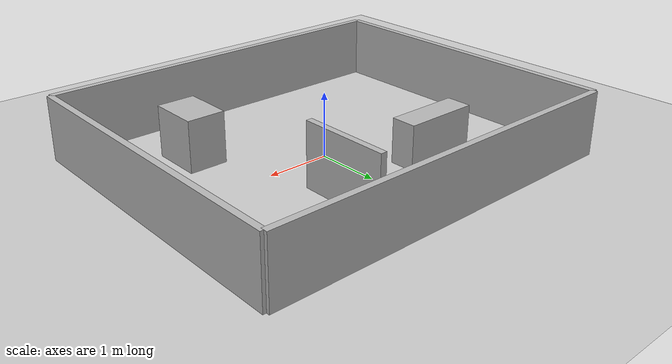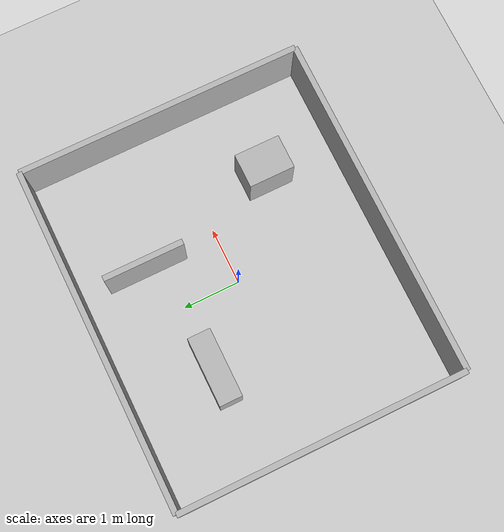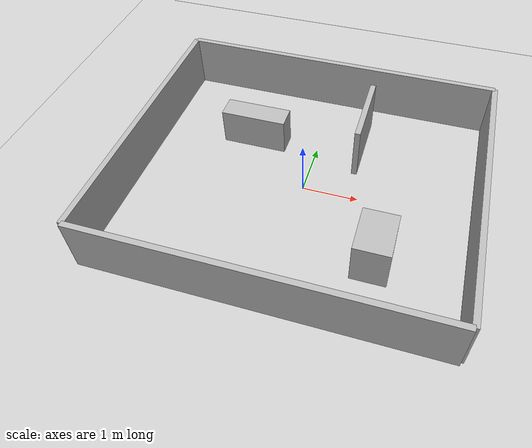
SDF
<?xml version="1.0" ?>

<sdf version="1.6">

  <world name="inspection_room">

    <!-- 光照 -->
    <include>
      <uri>model://sun</uri>
    </include>

    <!-- 地面 -->
    <include>
      <uri>model://ground_plane</uri>
    </include>

    <!-- 房间四面墙 -->
    <!-- 房间内部大约 6 m × 5 m -->

    <!-- 北墙 -->
    <model name="wall_north">
      <static>true</static>

      <pose>0 2.5 0.5 0 0 0</pose>

      <link name="link">

        <collision name="collision">
          <geometry>
            <box>
              <size>6.0 0.1 1.0</size>
            </box>
          </geometry>
        </collision>

        <visual name="visual">
          <geometry>
            <box>
              <size>6.0 0.1 1.0</size>
            </box>
          </geometry>
        </visual>

      </link>
    </model>

    <!-- 南墙 -->
    <model name="wall_south">
      <static>true</static>

      <pose>0 -2.5 0.5 0 0 0</pose>

      <link name="link">

        <collision name="collision">
          <geometry>
            <box>
              <size>6.0 0.1 1.0</size>
            </box>
          </geometry>
        </collision>

        <visual name="visual">
          <geometry>
            <box>
              <size>6.0 0.1 1.0</size>
            </box>
          </geometry>
        </visual>

      </link>
    </model>

    <!-- 西墙 -->
    <model name="wall_west">
      <static>true</static>

      <pose>-3.0 0 0.5 0 0 0</pose>

      <link name="link">

        <collision name="collision">
          <geometry>
            <box>
              <size>0.1 5.0 1.0</size>
            </box>
          </geometry>
        </collision>

        <visual name="visual">
          <geometry>
            <box>
              <size>0.1 5.0 1.0</size>
            </box>
          </geometry>
        </visual>

      </link>
    </model>

    <!-- 东墙 -->
    <model name="wall_east">
      <static>true</static>

      <pose>3.0 0 0.5 0 0 0</pose>

      <link name="link">

        <collision name="collision">
          <geometry>
            <box>
              <size>0.1 5.0 1.0</size>
            </box>
          </geometry>
        </collision>

        <visual name="visual">
          <geometry>
            <box>
              <size>0.1 5.0 1.0</size>
            </box>
          </geometry>
        </visual>

      </link>
    </model>

    <!-- 非对称障碍物 -->

    <!-- 左上区域的长方体 -->
    <model name="obstacle_long">
      <static>true</static>

      <pose>-1.2 1.0 0.35 0 0 0</pose>

      <link name="link">

        <collision name="collision">
          <geometry>
            <box>
              <size>1.2 0.4 0.7</size>
            </box>
          </geometry>
        </collision>

        <visual name="visual">
          <geometry>
            <box>
              <size>1.2 0.4 0.7</size>
            </box>
          </geometry>
        </visual>

      </link>
    </model>

    <!-- 右下区域的小方块 -->
    <model name="obstacle_small">
      <static>true</static>

      <pose>1.5 -1.2 0.4 0 0 0</pose>

      <link name="link">

        <collision name="collision">
          <geometry>
            <box>
              <size>0.6 0.8 0.8</size>
            </box>
          </geometry>
        </collision>

        <visual name="visual">
          <geometry>
            <box>
              <size>0.6 0.8 0.8</size>
            </box>
          </geometry>
        </visual>

      </link>
    </model>

    <!-- 一段短墙，制造明显拐角 -->
    <model name="inner_wall">
      <static>true</static>

      <pose>0.8 1.3 0.5 0 0 0</pose>

      <link name="link">

        <collision name="collision">
          <geometry>
            <box>
              <size>0.1 1.4 1.0</size>
            </box>
          </geometry>
        </collision>

        <visual name="visual">
          <geometry>
            <box>
              <size>0.1 1.4 1.0</size>
            </box>
          </geometry>
        </visual>

      </link>
    </model>

  </world>

</sdf>
